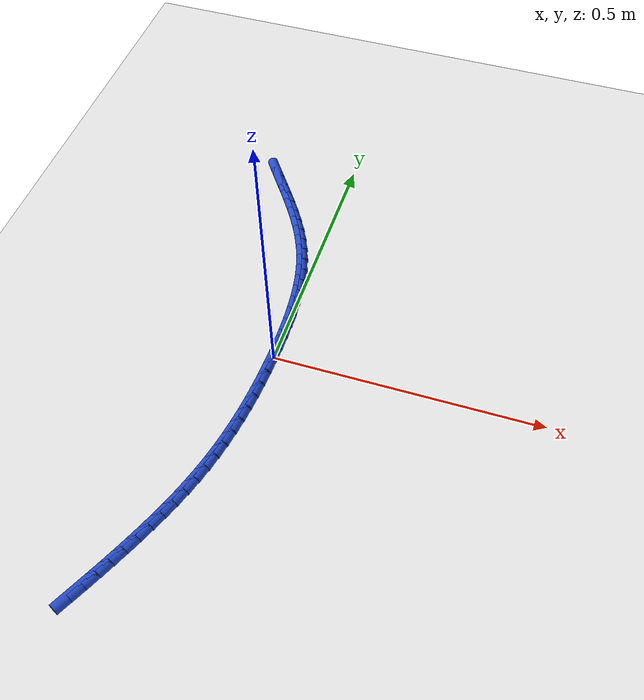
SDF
<sdf version="1.6">
 <world name="default">
  <model name="ground_plane">
   <static>1</static>
   <link name="link">
    <collision name="collision">
     <geometry><plane><normal>0 0 1</normal><size>100 100</size></plane></geometry>
     <surface><friction><ode><mu>100</mu><mu2>50</mu2></ode></friction></surface>
    </collision>
    <visual name="visual">
     <cast_shadows>0</cast_shadows>
     <geometry><plane><normal>0 0 1</normal><size>100 100</size></plane></geometry>
     <material>
      <script><uri>file://media/materials/scripts/gazebo.material</uri><name>Gazebo/WhiteGlow</name></script>
     </material>
    </visual>
   </link>
  </model>
  <model name="line">
   <link name="link_0">
    <pose>6.288372600415926e-18 -5.551115123125783e-17 0.01 0 1.57 1.5576710177558442</pose>
    <collision name="collision">
     <geometry><cylinder><radius>0.01</radius><length>0.08</length></cylinder></geometry>
    </collision>
    <visual name="visual">
     <material>
      <script><name>Gazebo/Blue</name><uri>file://media/materials/scripts/gazebo.material</uri></script>
     </material>
     <geometry><cylinder><radius>0.01</radius><length>0.08</length></cylinder></geometry>
    </visual>
   </link>
   <link name="link_1">
    <pose>0.00035819239381342763 0.027288639335198456 0.01 0 1.57 -1.563014140440489</pose>
    <collision name="collision">
     <geometry><cylinder><radius>0.01</radius><length>0.08</length></cylinder></geometry>
    </collision>
    <visual name="visual">
     <material>
      <script><name>Gazebo/Blue</name><uri>file://media/materials/scripts/gazebo.material</uri></script>
     </material>
     <geometry><cylinder><radius>0.01</radius><length>0.08</length></cylinder></geometry>
    </visual>
   </link>
   <link name="link_2">
    <pose>0.0001455609213107466 0.05461093287966267 0.01 0 1.57 -1.5373915077967988</pose>
    <collision name="collision">
     <geometry><cylinder><radius>0.01</radius><length>0.08</length></cylinder></geometry>
    </collision>
    <visual name="visual">
     <material>
      <script><name>Gazebo/Blue</name><uri>file://media/materials/scripts/gazebo.material</uri></script>
     </material>
     <geometry><cylinder><radius>0.01</radius><length>0.08</length></cylinder></geometry>
    </visual>
   </link>
   <link name="link_3">
    <pose>-0.0007656347469176687 0.08187815783113758 0.01 0 1.57 -1.506824728913577</pose>
    <collision name="collision">
     <geometry><cylinder><radius>0.01</radius><length>0.08</length></cylinder></geometry>
    </collision>
    <visual name="visual">
     <material>
      <script><name>Gazebo/Blue</name><uri>file://media/materials/scripts/gazebo.material</uri></script>
     </material>
     <geometry><cylinder><radius>0.01</radius><length>0.08</length></cylinder></geometry>
    </visual>
   </link>
   <link name="link_4">
    <pose>-0.002503134940281458 0.10900159138736809 0.01 0 1.57 -1.4710373537824666</pose>
    <collision name="collision">
     <geometry><cylinder><radius>0.01</radius><length>0.08</length></cylinder></geometry>
    </collision>
    <visual name="visual">
     <material>
      <script><name>Gazebo/Blue</name><uri>file://media/materials/scripts/gazebo.material</uri></script>
     </material>
     <geometry><cylinder><radius>0.01</radius><length>0.08</length></cylinder></geometry>
    </visual>
   </link>
   <link name="link_5">
    <pose>-0.005194679988190256 0.13589251074609907 0.01 0 1.57 -1.42972331197012</pose>
    <collision name="collision">
     <geometry><cylinder><radius>0.01</radius><length>0.08</length></cylinder></geometry>
    </collision>
    <visual name="visual">
     <material>
      <script><name>Gazebo/Blue</name><uri>file://media/materials/scripts/gazebo.material</uri></script>
     </material>
     <geometry><cylinder><radius>0.01</radius><length>0.08</length></cylinder></geometry>
    </visual>
   </link>
   <link name="link_6">
    <pose>-0.008968010220053698 0.16246219310507543 0.01 0 1.57 -1.382572923634424</pose>
    <collision name="collision">
     <geometry><cylinder><radius>0.01</radius><length>0.08</length></cylinder></geometry>
    </collision>
    <visual name="visual">
     <material>
      <script><name>Gazebo/Blue</name><uri>file://media/materials/scripts/gazebo.material</uri></script>
     </material>
     <geometry><cylinder><radius>0.01</radius><length>0.08</length></cylinder></geometry>
    </visual>
   </link>
   <link name="link_7">
    <pose>-0.013950865965281417 0.18862191566204203 0.01 0 1.57 -1.329310111363557</pose>
    <collision name="collision">
     <geometry><cylinder><radius>0.01</radius><length>0.08</length></cylinder></geometry>
    </collision>
    <visual name="visual">
     <material>
      <script><name>Gazebo/Blue</name><uri>file://media/materials/scripts/gazebo.material</uri></script>
     </material>
     <geometry><cylinder><radius>0.01</radius><length>0.08</length></cylinder></geometry>
    </visual>
   </link>
   <link name="link_8">
    <pose>-0.020270987553283056 0.21428295561474392 0.01 0 1.57 -1.2697431346788266</pose>
    <collision name="collision">
     <geometry><cylinder><radius>0.01</radius><length>0.08</length></cylinder></geometry>
    </collision>
    <visual name="visual">
     <material>
      <script><name>Gazebo/Blue</name><uri>file://media/materials/scripts/gazebo.material</uri></script>
     </material>
     <geometry><cylinder><radius>0.01</radius><length>0.08</length></cylinder></geometry>
    </visual>
   </link>
   <link name="link_9">
    <pose>-0.028056115313468254 0.23935659016092592 0.01 0 1.57 -1.2043960556134092</pose>
    <collision name="collision">
     <geometry><cylinder><radius>0.01</radius><length>0.08</length></cylinder></geometry>
    </collision>
    <visual name="visual">
     <material>
      <script><name>Gazebo/Blue</name><uri>file://media/materials/scripts/gazebo.material</uri></script>
     </material>
     <geometry><cylinder><radius>0.01</radius><length>0.08</length></cylinder></geometry>
    </visual>
   </link>
   <link name="link_10">
    <pose>-0.03742097810335495 0.2637615625482717 0.01 0 1.57 -1.1413541810037235</pose>
    <collision name="collision">
     <geometry><cylinder><radius>0.01</radius><length>0.08</length></cylinder></geometry>
    </collision>
    <visual name="visual">
     <material>
      <script><name>Gazebo/Blue</name><uri>file://media/materials/scripts/gazebo.material</uri></script>
     </material>
     <geometry><cylinder><radius>0.01</radius><length>0.08</length></cylinder></geometry>
    </visual>
   </link>
   <link name="link_11">
    <pose>-0.048300866656210105 0.28751957854920734 0.01 0 1.57 -1.0868293325058338</pose>
    <collision name="collision">
     <geometry><cylinder><radius>0.01</radius><length>0.08</length></cylinder></geometry>
    </collision>
    <visual name="visual">
     <material>
      <script><name>Gazebo/Blue</name><uri>file://media/materials/scripts/gazebo.material</uri></script>
     </material>
     <geometry><cylinder><radius>0.01</radius><length>0.08</length></cylinder></geometry>
    </visual>
   </link>
   <link name="link_12">
    <pose>-0.06050034722363524 0.3107273543205694 0.01 0 1.57 -1.0412027712834304</pose>
    <collision name="collision">
     <geometry><cylinder><radius>0.01</radius><length>0.08</length></cylinder></geometry>
    </collision>
    <visual name="visual">
     <material>
      <script><name>Gazebo/Blue</name><uri>file://media/materials/scripts/gazebo.material</uri></script>
     </material>
     <geometry><cylinder><radius>0.01</radius><length>0.08</length></cylinder></geometry>
    </visual>
   </link>
   <link name="link_13">
    <pose>-0.07382102474752579 0.33348330523403574 0.01 0 1.57 -1.0044701815467032</pose>
    <collision name="collision">
     <geometry><cylinder><radius>0.01</radius><length>0.08</length></cylinder></geometry>
    </collision>
    <visual name="visual">
     <material>
      <script><name>Gazebo/Blue</name><uri>file://media/materials/scripts/gazebo.material</uri></script>
     </material>
     <geometry><cylinder><radius>0.01</radius><length>0.08</length></cylinder></geometry>
    </visual>
   </link>
   <link name="link_14">
    <pose>-0.08806450416977718 0.3558858466612842 0.01 0 1.57 -0.9764794870385074</pose>
    <collision name="collision">
     <geometry><cylinder><radius>0.01</radius><length>0.08</length></cylinder></geometry>
    </collision>
    <visual name="visual">
     <material>
      <script><name>Gazebo/Blue</name><uri>file://media/materials/scripts/gazebo.material</uri></script>
     </material>
     <geometry><cylinder><radius>0.01</radius><length>0.08</length></cylinder></geometry>
    </visual>
   </link>
   <link name="link_15">
    <pose>-0.10303239043228493 0.37803339397399294 0.01 0 1.57 -0.9570182973954346</pose>
    <collision name="collision">
     <geometry><cylinder><radius>0.01</radius><length>0.08</length></cylinder></geometry>
    </collision>
    <visual name="visual">
     <material>
      <script><name>Gazebo/Blue</name><uri>file://media/materials/scripts/gazebo.material</uri></script>
     </material>
     <geometry><cylinder><radius>0.01</radius><length>0.08</length></cylinder></geometry>
    </visual>
   </link>
   <link name="link_16">
    <pose>-0.11852628847694446 0.40002436254384 0.01 0 1.57 -0.9458761800640695</pose>
    <collision name="collision">
     <geometry><cylinder><radius>0.01</radius><length>0.08</length></cylinder></geometry>
    </collision>
    <visual name="visual">
     <material>
      <script><name>Gazebo/Blue</name><uri>file://media/materials/scripts/gazebo.material</uri></script>
     </material>
     <geometry><cylinder><radius>0.01</radius><length>0.08</length></cylinder></geometry>
    </visual>
   </link>
   <link name="link_17">
    <pose>-0.1343478032456513 0.4219571677425031 0.01 0 1.57 -0.9428837347033211</pose>
    <collision name="collision">
     <geometry><cylinder><radius>0.01</radius><length>0.08</length></cylinder></geometry>
    </collision>
    <visual name="visual">
     <material>
      <script><name>Gazebo/Blue</name><uri>file://media/materials/scripts/gazebo.material</uri></script>
     </material>
     <geometry><cylinder><radius>0.01</radius><length>0.08</length></cylinder></geometry>
    </visual>
   </link>
   <link name="link_18">
    <pose>-0.1502985396803008 0.4439302249416603 0.01 0 1.57 -0.9479322230216088</pose>
    <collision name="collision">
     <geometry><cylinder><radius>0.01</radius><length>0.08</length></cylinder></geometry>
    </collision>
    <visual name="visual">
     <material>
      <script><name>Gazebo/Blue</name><uri>file://media/materials/scripts/gazebo.material</uri></script>
     </material>
     <geometry><cylinder><radius>0.01</radius><length>0.08</length></cylinder></geometry>
    </visual>
   </link>
   <link name="link_230">
    <pose>-0.13863380550675036 -0.5118804424157062 0.01 0 1.57 1.1093151782700674</pose>
    <collision name="collision">
     <geometry><cylinder><radius>0.01</radius><length>0.08</length></cylinder></geometry>
    </collision>
    <visual name="visual">
     <material>
      <script><name>Gazebo/Blue</name><uri>file://media/materials/scripts/gazebo.material</uri></script>
     </material>
     <geometry><cylinder><radius>0.01</radius><length>0.08</length></cylinder></geometry>
    </visual>
   </link>
   <link name="link_231">
    <pose>-0.1265742923555947 -0.48763021513163834 0.01 0 1.57 1.118323083642595</pose>
    <collision name="collision">
     <geometry><cylinder><radius>0.01</radius><length>0.08</length></cylinder></geometry>
    </collision>
    <visual name="visual">
     <material>
      <script><name>Gazebo/Blue</name><uri>file://media/materials/scripts/gazebo.material</uri></script>
     </material>
     <geometry><cylinder><radius>0.01</radius><length>0.08</length></cylinder></geometry>
    </visual>
   </link>
   <link name="link_232">
    <pose>-0.11474867194144825 -0.4633031227021458 0.01 0 1.57 1.1286104838512918</pose>
    <collision name="collision">
     <geometry><cylinder><radius>0.01</radius><length>0.08</length></cylinder></geometry>
    </collision>
    <visual name="visual">
     <material>
      <script><name>Gazebo/Blue</name><uri>file://media/materials/scripts/gazebo.material</uri></script>
     </material>
     <geometry><cylinder><radius>0.01</radius><length>0.08</length></cylinder></geometry>
    </visual>
   </link>
   <link name="link_233">
    <pose>-0.10319526491023644 -0.4389007156939612 0.01 0 1.57 1.1415334536834696</pose>
    <collision name="collision">
     <geometry><cylinder><radius>0.01</radius><length>0.08</length></cylinder></geometry>
    </collision>
    <visual name="visual">
     <material>
      <script><name>Gazebo/Blue</name><uri>file://media/materials/scripts/gazebo.material</uri></script>
     </material>
     <geometry><cylinder><radius>0.01</radius><length>0.08</length></cylinder></geometry>
    </visual>
   </link>
   <link name="link_234">
    <pose>-0.09198345861909357 -0.4144063042004407 0.01 0 1.57 1.157135829274145</pose>
    <collision name="collision">
     <geometry><cylinder><radius>0.01</radius><length>0.08</length></cylinder></geometry>
    </collision>
    <visual name="visual">
     <material>
      <script><name>Gazebo/Blue</name><uri>file://media/materials/scripts/gazebo.material</uri></script>
     </material>
     <geometry><cylinder><radius>0.01</radius><length>0.08</length></cylinder></geometry>
    </visual>
   </link>
   <link name="link_235">
    <pose>-0.08118287679407067 -0.3898030595335636 0.01 0 1.57 1.1754532524760537</pose>
    <collision name="collision">
     <geometry><cylinder><radius>0.01</radius><length>0.08</length></cylinder></geometry>
    </collision>
    <visual name="visual">
     <material>
      <script><name>Gazebo/Blue</name><uri>file://media/materials/scripts/gazebo.material</uri></script>
     </material>
     <geometry><cylinder><radius>0.01</radius><length>0.08</length></cylinder></geometry>
    </visual>
   </link>
   <link name="link_236">
    <pose>-0.0708631431612187 -0.3650741530053097 0.01 0 1.57 1.1965199841774157</pose>
    <collision name="collision">
     <geometry><cylinder><radius>0.01</radius><length>0.08</length></cylinder></geometry>
    </collision>
    <visual name="visual">
     <material>
      <script><name>Gazebo/Blue</name><uri>file://media/materials/scripts/gazebo.material</uri></script>
     </material>
     <geometry><cylinder><radius>0.01</radius><length>0.08</length></cylinder></geometry>
    </visual>
   </link>
   <link name="link_237">
    <pose>-0.061093881446588685 -0.3402027559276586 0.01 0 1.57 1.2203648433186665</pose>
    <collision name="collision">
     <geometry><cylinder><radius>0.01</radius><length>0.08</length></cylinder></geometry>
    </collision>
    <visual name="visual">
     <material>
      <script><name>Gazebo/Blue</name><uri>file://media/materials/scripts/gazebo.material</uri></script>
     </material>
     <geometry><cylinder><radius>0.01</radius><length>0.08</length></cylinder></geometry>
    </visual>
   </link>
   <link name="link_238">
    <pose>-0.051944715376231604 -0.31517203961258994 0.01 0 1.57 1.24700633922204</pose>
    <collision name="collision">
     <geometry><cylinder><radius>0.01</radius><length>0.08</length></cylinder></geometry>
    </collision>
    <visual name="visual">
     <material>
      <script><name>Gazebo/Blue</name><uri>file://media/materials/scripts/gazebo.material</uri></script>
     </material>
     <geometry><cylinder><radius>0.01</radius><length>0.08</length></cylinder></geometry>
    </visual>
   </link>
   <link name="link_239">
    <pose>-0.04348526867619848 -0.2899651753720835 0.01 0 1.57 1.276447020791734</pose>
    <collision name="collision">
     <geometry><cylinder><radius>0.01</radius><length>0.08</length></cylinder></geometry>
    </collision>
    <visual name="visual">
     <material>
      <script><name>Gazebo/Blue</name><uri>file://media/materials/scripts/gazebo.material</uri></script>
     </material>
     <geometry><cylinder><radius>0.01</radius><length>0.08</length></cylinder></geometry>
    </visual>
   </link>
   <link name="link_240">
    <pose>-0.03578516507254049 -0.2645653345181195 0.01 0 1.57 1.3086265773621746</pose>
    <collision name="collision">
     <geometry><cylinder><radius>0.01</radius><length>0.08</length></cylinder></geometry>
    </collision>
    <visual name="visual">
     <material>
      <script><name>Gazebo/Blue</name><uri>file://media/materials/scripts/gazebo.material</uri></script>
     </material>
     <geometry><cylinder><radius>0.01</radius><length>0.08</length></cylinder></geometry>
    </visual>
   </link>
   <link name="link_241">
    <pose>-0.02891298067872072 -0.23895593592329423 0.01 0 1.57 1.341704207430832</pose>
    <collision name="collision">
     <geometry><cylinder><radius>0.01</radius><length>0.08</length></cylinder></geometry>
    </collision>
    <visual name="visual">
     <material>
      <script><name>Gazebo/Blue</name><uri>file://media/materials/scripts/gazebo.material</uri></script>
     </material>
     <geometry><cylinder><radius>0.01</radius><length>0.08</length></cylinder></geometry>
    </visual>
   </link>
   <link name="link_242">
    <pose>-0.02289104564743555 -0.2131313268117379 0.01 0 1.57 1.3731517958550836</pose>
    <collision name="collision">
     <geometry><cylinder><radius>0.01</radius><length>0.08</length></cylinder></geometry>
    </collision>
    <visual name="visual">
     <material>
      <script><name>Gazebo/Blue</name><uri>file://media/materials/scripts/gazebo.material</uri></script>
     </material>
     <geometry><cylinder><radius>0.01</radius><length>0.08</length></cylinder></geometry>
    </visual>
   </link>
   <link name="link_243">
    <pose>-0.017678210908908337 -0.18710085513946317 0.01 0 1.57 1.4027366161769521</pose>
    <collision name="collision">
     <geometry><cylinder><radius>0.01</radius><length>0.08</length></cylinder></geometry>
    </collision>
    <visual name="visual">
     <material>
      <script><name>Gazebo/Blue</name><uri>file://media/materials/scripts/gazebo.material</uri></script>
     </material>
     <geometry><cylinder><radius>0.01</radius><length>0.08</length></cylinder></geometry>
    </visual>
   </link>
   <link name="link_244">
    <pose>-0.013228724368657643 -0.16087495660011977 0.01 0 1.57 1.4304244262346575</pose>
    <collision name="collision">
     <geometry><cylinder><radius>0.01</radius><length>0.08</length></cylinder></geometry>
    </collision>
    <visual name="visual">
     <material>
      <script><name>Gazebo/Blue</name><uri>file://media/materials/scripts/gazebo.material</uri></script>
     </material>
     <geometry><cylinder><radius>0.01</radius><length>0.08</length></cylinder></geometry>
    </visual>
   </link>
   <link name="link_245">
    <pose>-0.009496833932202037 -0.13446406688735746 0.01 0 1.57 1.4561983164511898</pose>
    <collision name="collision">
     <geometry><cylinder><radius>0.01</radius><length>0.08</length></cylinder></geometry>
    </collision>
    <visual name="visual">
     <material>
      <script><name>Gazebo/Blue</name><uri>file://media/materials/scripts/gazebo.material</uri></script>
     </material>
     <geometry><cylinder><radius>0.01</radius><length>0.08</length></cylinder></geometry>
    </visual>
   </link>
   <link name="link_246">
    <pose>-0.00643678750506008 -0.10787862169482577 0.01 0 1.57 1.4800557643759946</pose>
    <collision name="collision">
     <geometry><cylinder><radius>0.01</radius><length>0.08</length></cylinder></geometry>
    </collision>
    <visual name="visual">
     <material>
      <script><name>Gazebo/Blue</name><uri>file://media/materials/scripts/gazebo.material</uri></script>
     </material>
     <geometry><cylinder><radius>0.01</radius><length>0.08</length></cylinder></geometry>
    </visual>
   </link>
   <link name="link_247">
    <pose>-0.004002832992750329 -0.08112905671617451 0.01 0 1.57 1.5020057540388414</pose>
    <collision name="collision">
     <geometry><cylinder><radius>0.01</radius><length>0.08</length></cylinder></geometry>
    </collision>
    <visual name="visual">
     <material>
      <script><name>Gazebo/Blue</name><uri>file://media/materials/scripts/gazebo.material</uri></script>
     </material>
     <geometry><cylinder><radius>0.01</radius><length>0.08</length></cylinder></geometry>
    </visual>
   </link>
   <link name="link_248">
    <pose>-0.0021492183007913593 -0.05422580764505336 0.01 0 1.57 1.5220660713597003</pose>
    <collision name="collision">
     <geometry><cylinder><radius>0.01</radius><length>0.08</length></cylinder></geometry>
    </collision>
    <visual name="visual">
     <material>
      <script><name>Gazebo/Blue</name><uri>file://media/materials/scripts/gazebo.material</uri></script>
     </material>
     <geometry><cylinder><radius>0.01</radius><length>0.08</length></cylinder></geometry>
    </visual>
   </link>
   <link name="link_249">
    <pose>-0.0008301913347017253 -0.027179310175111965 0.01 0 1.57 1.5402608464776386</pose>
    <collision name="collision">
     <geometry><cylinder><radius>0.01</radius><length>0.08</length></cylinder></geometry>
    </collision>
    <visual name="visual">
     <material>
      <script><name>Gazebo/Blue</name><uri>file://media/materials/scripts/gazebo.material</uri></script>
     </material>
     <geometry><cylinder><radius>0.01</radius><length>0.08</length></cylinder></geometry>
    </visual>
   </link>
   <link name="link_250">
    <pose>6.288372600415926e-18 -5.551115123125783e-17 0.01 0 1.57 1.5566183803276612</pose>
    <collision name="collision">
     <geometry><cylinder><radius>0.01</radius><length>0.08</length></cylinder></geometry>
    </collision>
    <visual name="visual">
     <material>
      <script><name>Gazebo/Blue</name><uri>file://media/materials/scripts/gazebo.material</uri></script>
     </material>
     <geometry><cylinder><radius>0.01</radius><length>0.08</length></cylinder></geometry>
    </visual>
   </link>
   <link name="link_251">
    <pose>0.0003871077977952739 0.027301687186632707 0.01 0 1.57 -1.5704233865927595</pose>
    <collision name="collision">
     <geometry><cylinder><radius>0.01</radius><length>0.08</length></cylinder></geometry>
    </collision>
    <visual name="visual">
     <material>
      <script><name>Gazebo/Blue</name><uri>file://media/materials/scripts/gazebo.material</uri></script>
     </material>
     <geometry><cylinder><radius>0.01</radius><length>0.08</length></cylinder></geometry>
    </visual>
   </link>
   <link name="link_252">
    <pose>0.00037688415316551073 0.05471531569113661 0.01 0 1.57 1.5639083432742125</pose>
    <collision name="collision">
     <geometry><cylinder><radius>0.01</radius><length>0.08</length></cylinder></geometry>
    </collision>
    <visual name="visual">
     <material>
      <script><name>Gazebo/Blue</name><uri>file://media/materials/scripts/gazebo.material</uri></script>
     </material>
     <geometry><cylinder><radius>0.01</radius><length>0.08</length></cylinder></geometry>
    </visual>
   </link>
  </model>
 </world>
</sdf>
